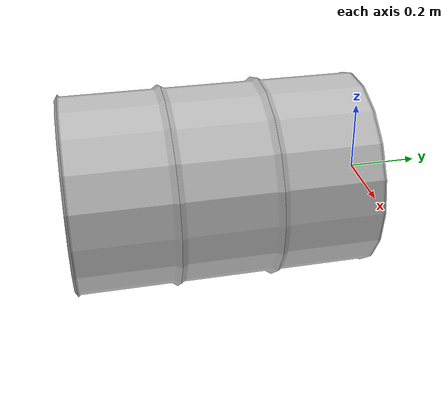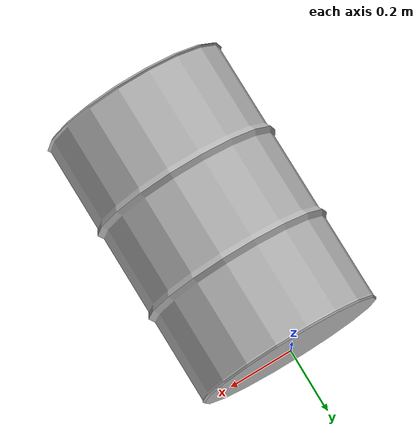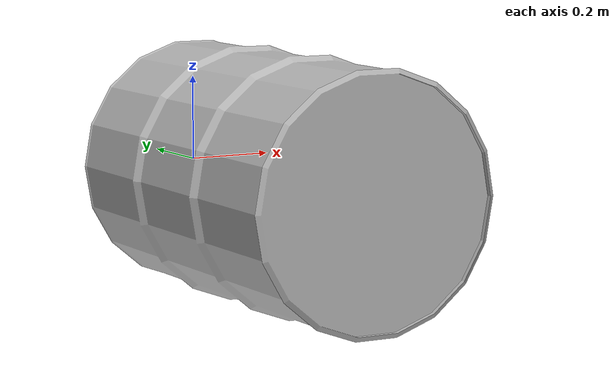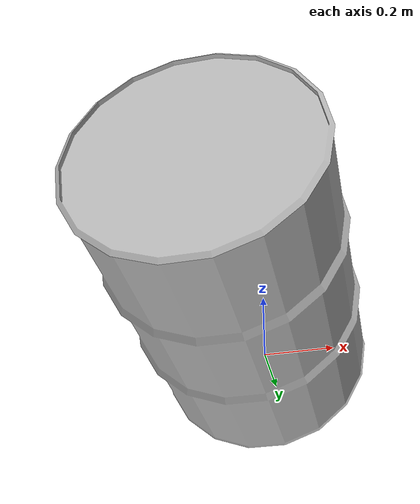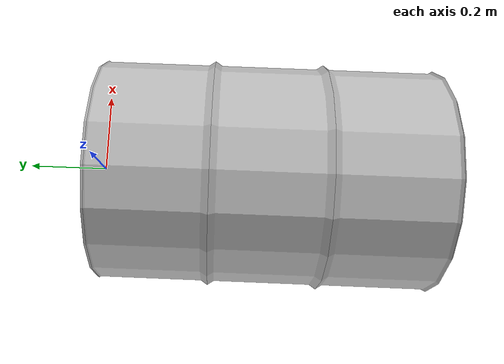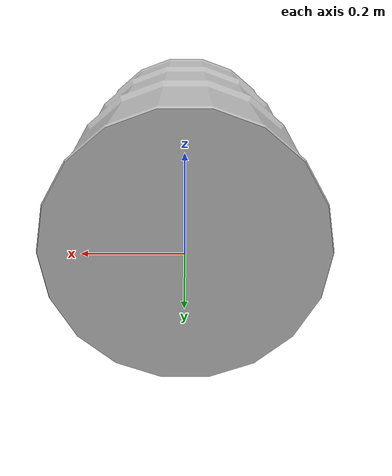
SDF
<?xml version="1.0" ?>
<sdf version="1.6">
    <model name="55gal_Drum">
        <link name="base_link">
            <visual name="base_visual">
                <geometry>
                    <mesh>
                        <uri>base_visual.dae</uri>
                    </mesh>
                </geometry>
            </visual>
            <collision name="55_gallon_drum01_collider_cylinder">
                <pose>0.0 -0.0 0.431104 -0.0 0.0 0.0</pose>
                <geometry>
                    <cylinder>
                        <radius>0.297295</radius>
                        <length>0.862208</length>
                    </cylinder>
                </geometry>
            </collision>
        </link>
    </model>
</sdf>
